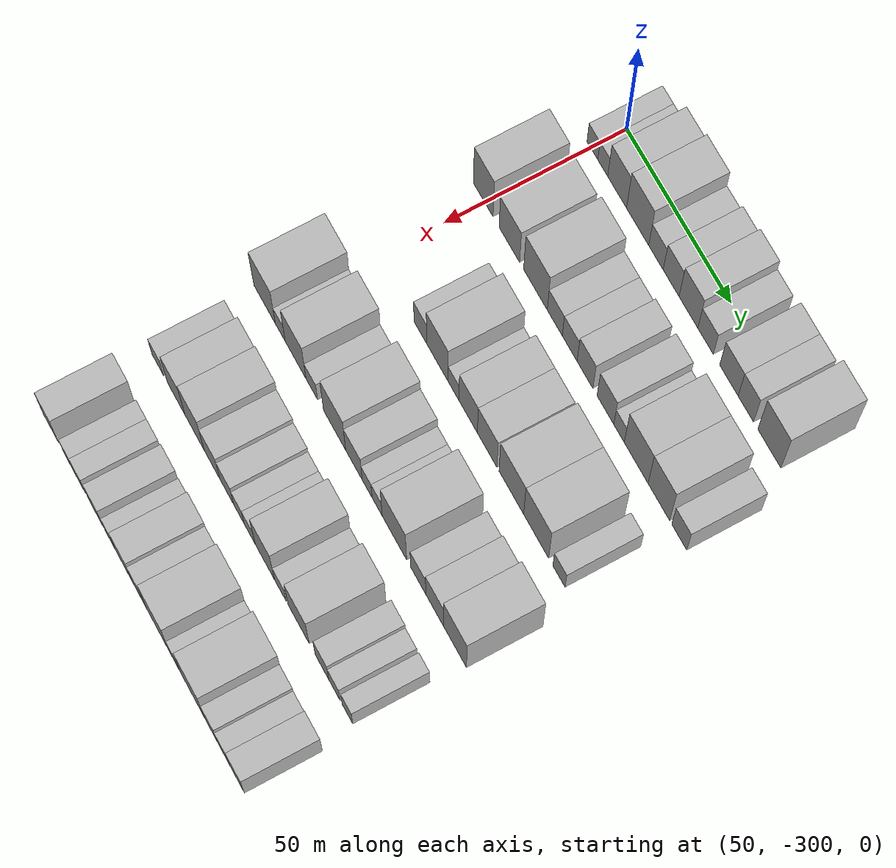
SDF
<sdf version="1.6">
 <world name="default">
  <model name="building_24">
   <static>1</static>
   <pose>50.0000 -299.1880 0 0.000000 0.000000 0.000000</pose>
   <link name="link">
    <pose>0 0 6.00 0 0 0</pose>
    <collision name="collision"><geometry><box><size>20.0000 5.2600 12.0000</size></box></geometry></collision>
    <visual name="visual">
     <cast_shadows>0</cast_shadows>
     <geometry><box><size>20.0000 5.2600 12.0000</size></box></geometry>
     <material>
      <script>
       <uri>model://HANNAS_wall/materials/scripts</uri>
       <uri>model://HANNAS_wall/materials/textures</uri>
       <name>vrc/HANNAS_wall</name>
      </script>
     </material>
    </visual>
   </link>
  </model>
  <model name="building_25">
   <static>1</static>
   <pose>50.0000 -294.1270 0 0.000000 0.000000 0.000000</pose>
   <link name="link">
    <pose>0 0 6.00 0 0 0</pose>
    <collision name="collision"><geometry><box><size>20.0000 4.8620 12.0000</size></box></geometry></collision>
    <visual name="visual">
     <cast_shadows>0</cast_shadows>
     <geometry><box><size>20.0000 4.8620 12.0000</size></box></geometry>
     <material>
      <script>
       <uri>model://HANNAS_wall/materials/scripts</uri>
       <uri>model://HANNAS_wall/materials/textures</uri>
       <name>vrc/HANNAS_wall</name>
      </script>
     </material>
    </visual>
   </link>
  </model>
  <model name="building_26">
   <static>1</static>
   <pose>50.0000 -287.1292 0 0.000000 0.000000 0.000000</pose>
   <link name="link">
    <pose>0 0 10.50 0 0 0</pose>
    <collision name="collision"><geometry><box><size>20.0000 9.1337 21.0000</size></box></geometry></collision>
    <visual name="visual">
     <cast_shadows>0</cast_shadows>
     <geometry><box><size>20.0000 9.1337 21.0000</size></box></geometry>
     <material>
      <script>
       <uri>model://HANNAS_wall/materials/scripts</uri>
       <uri>model://HANNAS_wall/materials/textures</uri>
       <name>vrc/HANNAS_wall</name>
      </script>
     </material>
    </visual>
   </link>
  </model>
  <model name="building_27">
   <static>1</static>
   <pose>50.0000 -277.2071 0 0.000000 0.000000 0.000000</pose>
   <link name="link">
    <pose>0 0 12.00 0 0 0</pose>
    <collision name="collision"><geometry><box><size>20.0000 10.7105 24.0000</size></box></geometry></collision>
    <visual name="visual">
     <cast_shadows>0</cast_shadows>
     <geometry><box><size>20.0000 10.7105 24.0000</size></box></geometry>
     <material>
      <script>
       <uri>model://HANNAS_wall/materials/scripts</uri>
       <uri>model://HANNAS_wall/materials/textures</uri>
       <name>vrc/HANNAS_wall</name>
      </script>
     </material>
    </visual>
   </link>
  </model>
  <model name="building_28">
   <static>1</static>
   <pose>50.0000 -268.3715 0 0.000000 0.000000 0.000000</pose>
   <link name="link">
    <pose>0 0 7.50 0 0 0</pose>
    <collision name="collision"><geometry><box><size>20.0000 6.9605 15.0000</size></box></geometry></collision>
    <visual name="visual">
     <cast_shadows>0</cast_shadows>
     <geometry><box><size>20.0000 6.9605 15.0000</size></box></geometry>
     <material>
      <script>
       <uri>model://HANNAS_wall/materials/scripts</uri>
       <uri>model://HANNAS_wall/materials/textures</uri>
       <name>vrc/HANNAS_wall</name>
      </script>
     </material>
    </visual>
   </link>
  </model>
  <model name="building_29">
   <static>1</static>
   <pose>50.0000 -261.0949 0 0.000000 0.000000 0.000000</pose>
   <link name="link">
    <pose>0 0 9.00 0 0 0</pose>
    <collision name="collision"><geometry><box><size>20.0000 7.5927 18.0000</size></box></geometry></collision>
    <visual name="visual">
     <cast_shadows>0</cast_shadows>
     <geometry><box><size>20.0000 7.5927 18.0000</size></box></geometry>
     <material>
      <script>
       <uri>model://HANNAS_wall/materials/scripts</uri>
       <uri>model://HANNAS_wall/materials/textures</uri>
       <name>vrc/HANNAS_wall</name>
      </script>
     </material>
    </visual>
   </link>
  </model>
  <model name="building_30">
   <static>1</static>
   <pose>50.0000 -252.8241 0 0.000000 0.000000 0.000000</pose>
   <link name="link">
    <pose>0 0 10.50 0 0 0</pose>
    <collision name="collision"><geometry><box><size>20.0000 8.9490 21.0000</size></box></geometry></collision>
    <visual name="visual">
     <cast_shadows>0</cast_shadows>
     <geometry><box><size>20.0000 8.9490 21.0000</size></box></geometry>
     <material>
      <script>
       <uri>model://HANNAS_wall/materials/scripts</uri>
       <uri>model://HANNAS_wall/materials/textures</uri>
       <name>vrc/HANNAS_wall</name>
      </script>
     </material>
    </visual>
   </link>
  </model>
  <model name="building_31">
   <static>1</static>
   <pose>50.0000 -244.6851 0 0.000000 0.000000 0.000000</pose>
   <link name="link">
    <pose>0 0 7.50 0 0 0</pose>
    <collision name="collision"><geometry><box><size>20.0000 7.3291 15.0000</size></box></geometry></collision>
    <visual name="visual">
     <cast_shadows>0</cast_shadows>
     <geometry><box><size>20.0000 7.3291 15.0000</size></box></geometry>
     <material>
      <script>
       <uri>model://HANNAS_wall/materials/scripts</uri>
       <uri>model://HANNAS_wall/materials/textures</uri>
       <name>vrc/HANNAS_wall</name>
      </script>
     </material>
    </visual>
   </link>
  </model>
  <model name="building_32">
   <static>1</static>
   <pose>50.0000 -233.7050 0 0.000000 0.000000 0.000000</pose>
   <link name="link">
    <pose>0 0 9.00 0 0 0</pose>
    <collision name="collision"><geometry><box><size>20.0000 8.6311 18.0000</size></box></geometry></collision>
    <visual name="visual">
     <cast_shadows>0</cast_shadows>
     <geometry><box><size>20.0000 8.6311 18.0000</size></box></geometry>
     <material>
      <script>
       <uri>model://HANNAS_wall/materials/scripts</uri>
       <uri>model://HANNAS_wall/materials/textures</uri>
       <name>vrc/HANNAS_wall</name>
      </script>
     </material>
    </visual>
   </link>
  </model>
  <model name="building_33">
   <static>1</static>
   <pose>50.0000 -225.7791 0 0.000000 0.000000 0.000000</pose>
   <link name="link">
    <pose>0 0 9.00 0 0 0</pose>
    <collision name="collision"><geometry><box><size>20.0000 7.2206 18.0000</size></box></geometry></collision>
    <visual name="visual">
     <cast_shadows>0</cast_shadows>
     <geometry><box><size>20.0000 7.2206 18.0000</size></box></geometry>
     <material>
      <script>
       <uri>model://HANNAS_wall/materials/scripts</uri>
       <uri>model://HANNAS_wall/materials/textures</uri>
       <name>vrc/HANNAS_wall</name>
      </script>
     </material>
    </visual>
   </link>
  </model>
  <model name="building_34">
   <static>1</static>
   <pose>50.0000 -214.8149 0 0.000000 0.000000 0.000000</pose>
   <link name="link">
    <pose>0 0 12.00 0 0 0</pose>
    <collision name="collision"><geometry><box><size>20.0000 10.7077 24.0000</size></box></geometry></collision>
    <visual name="visual">
     <cast_shadows>0</cast_shadows>
     <geometry><box><size>20.0000 10.7077 24.0000</size></box></geometry>
     <material>
      <script>
       <uri>model://HANNAS_wall/materials/scripts</uri>
       <uri>model://HANNAS_wall/materials/textures</uri>
       <name>vrc/HANNAS_wall</name>
      </script>
     </material>
    </visual>
   </link>
  </model>
  <model name="building_129">
   <static>1</static>
   <pose>79.0000 -300.7385 0 0.000000 0.000000 0.000000</pose>
   <link name="link">
    <pose>0 0 12.00 0 0 0</pose>
    <collision name="collision"><geometry><box><size>20.0000 9.6696 24.0000</size></box></geometry></collision>
    <visual name="visual">
     <cast_shadows>0</cast_shadows>
     <geometry><box><size>20.0000 9.6696 24.0000</size></box></geometry>
     <material>
      <script>
       <uri>model://HANNAS_wall/materials/scripts</uri>
       <uri>model://HANNAS_wall/materials/textures</uri>
       <name>vrc/HANNAS_wall</name>
      </script>
     </material>
    </visual>
   </link>
  </model>
  <model name="building_130">
   <static>1</static>
   <pose>79.0000 -287.8692 0 0.000000 0.000000 0.000000</pose>
   <link name="link">
    <pose>0 0 10.50 0 0 0</pose>
    <collision name="collision"><geometry><box><size>20.0000 10.0691 21.0000</size></box></geometry></collision>
    <visual name="visual">
     <cast_shadows>0</cast_shadows>
     <geometry><box><size>20.0000 10.0691 21.0000</size></box></geometry>
     <material>
      <script>
       <uri>model://HANNAS_wall/materials/scripts</uri>
       <uri>model://HANNAS_wall/materials/textures</uri>
       <name>vrc/HANNAS_wall</name>
      </script>
     </material>
    </visual>
   </link>
  </model>
  <model name="building_131">
   <static>1</static>
   <pose>79.0000 -275.0731 0 0.000000 0.000000 0.000000</pose>
   <link name="link">
    <pose>0 0 12.00 0 0 0</pose>
    <collision name="collision"><geometry><box><size>20.0000 11.5230 24.0000</size></box></geometry></collision>
    <visual name="visual">
     <cast_shadows>0</cast_shadows>
     <geometry><box><size>20.0000 11.5230 24.0000</size></box></geometry>
     <material>
      <script>
       <uri>model://HANNAS_wall/materials/scripts</uri>
       <uri>model://HANNAS_wall/materials/textures</uri>
       <name>vrc/HANNAS_wall</name>
      </script>
     </material>
    </visual>
   </link>
  </model>
  <model name="building_132">
   <static>1</static>
   <pose>79.0000 -265.6688 0 0.000000 0.000000 0.000000</pose>
   <link name="link">
    <pose>0 0 7.50 0 0 0</pose>
    <collision name="collision"><geometry><box><size>20.0000 7.2855 15.0000</size></box></geometry></collision>
    <visual name="visual">
     <cast_shadows>0</cast_shadows>
     <geometry><box><size>20.0000 7.2855 15.0000</size></box></geometry>
     <material>
      <script>
       <uri>model://HANNAS_wall/materials/scripts</uri>
       <uri>model://HANNAS_wall/materials/textures</uri>
       <name>vrc/HANNAS_wall</name>
      </script>
     </material>
    </visual>
   </link>
  </model>
  <model name="building_133">
   <static>1</static>
   <pose>79.0000 -258.4557 0 0.000000 0.000000 0.000000</pose>
   <link name="link">
    <pose>0 0 7.50 0 0 0</pose>
    <collision name="collision"><geometry><box><size>20.0000 7.1408 15.0000</size></box></geometry></collision>
    <visual name="visual">
     <cast_shadows>0</cast_shadows>
     <geometry><box><size>20.0000 7.1408 15.0000</size></box></geometry>
     <material>
      <script>
       <uri>model://HANNAS_wall/materials/scripts</uri>
       <uri>model://HANNAS_wall/materials/textures</uri>
       <name>vrc/HANNAS_wall</name>
      </script>
     </material>
    </visual>
   </link>
  </model>
  <model name="building_134">
   <static>1</static>
   <pose>79.0000 -251.0875 0 0.000000 0.000000 0.000000</pose>
   <link name="link">
    <pose>0 0 9.00 0 0 0</pose>
    <collision name="collision"><geometry><box><size>20.0000 7.5955 18.0000</size></box></geometry></collision>
    <visual name="visual">
     <cast_shadows>0</cast_shadows>
     <geometry><box><size>20.0000 7.5955 18.0000</size></box></geometry>
     <material>
      <script>
       <uri>model://HANNAS_wall/materials/scripts</uri>
       <uri>model://HANNAS_wall/materials/textures</uri>
       <name>vrc/HANNAS_wall</name>
      </script>
     </material>
    </visual>
   </link>
  </model>
  <model name="building_135">
   <static>1</static>
   <pose>79.0000 -241.3027 0 0.000000 0.000000 0.000000</pose>
   <link name="link">
    <pose>0 0 9.00 0 0 0</pose>
    <collision name="collision"><geometry><box><size>20.0000 7.9740 18.0000</size></box></geometry></collision>
    <visual name="visual">
     <cast_shadows>0</cast_shadows>
     <geometry><box><size>20.0000 7.9740 18.0000</size></box></geometry>
     <material>
      <script>
       <uri>model://HANNAS_wall/materials/scripts</uri>
       <uri>model://HANNAS_wall/materials/textures</uri>
       <name>vrc/HANNAS_wall</name>
      </script>
     </material>
    </visual>
   </link>
  </model>
  <model name="building_136">
   <static>1</static>
   <pose>79.0000 -234.8281 0 0.000000 0.000000 0.000000</pose>
   <link name="link">
    <pose>0 0 6.00 0 0 0</pose>
    <collision name="collision"><geometry><box><size>20.0000 4.9752 12.0000</size></box></geometry></collision>
    <visual name="visual">
     <cast_shadows>0</cast_shadows>
     <geometry><box><size>20.0000 4.9752 12.0000</size></box></geometry>
     <material>
      <script>
       <uri>model://HANNAS_wall/materials/scripts</uri>
       <uri>model://HANNAS_wall/materials/textures</uri>
       <name>vrc/HANNAS_wall</name>
      </script>
     </material>
    </visual>
   </link>
  </model>
  <model name="building_137">
   <static>1</static>
   <pose>79.0000 -226.7027 0 0.000000 0.000000 0.000000</pose>
   <link name="link">
    <pose>0 0 12.00 0 0 0</pose>
    <collision name="collision"><geometry><box><size>20.0000 11.2756 24.0000</size></box></geometry></collision>
    <visual name="visual">
     <cast_shadows>0</cast_shadows>
     <geometry><box><size>20.0000 11.2756 24.0000</size></box></geometry>
     <material>
      <script>
       <uri>model://HANNAS_wall/materials/scripts</uri>
       <uri>model://HANNAS_wall/materials/textures</uri>
       <name>vrc/HANNAS_wall</name>
      </script>
     </material>
    </visual>
   </link>
  </model>
  <model name="building_138">
   <static>1</static>
   <pose>79.0000 -215.9854 0 0.000000 0.000000 0.000000</pose>
   <link name="link">
    <pose>0 0 12.00 0 0 0</pose>
    <collision name="collision"><geometry><box><size>20.0000 10.1590 24.0000</size></box></geometry></collision>
    <visual name="visual">
     <cast_shadows>0</cast_shadows>
     <geometry><box><size>20.0000 10.1590 24.0000</size></box></geometry>
     <material>
      <script>
       <uri>model://HANNAS_wall/materials/scripts</uri>
       <uri>model://HANNAS_wall/materials/textures</uri>
       <name>vrc/HANNAS_wall</name>
      </script>
     </material>
    </visual>
   </link>
  </model>
  <model name="building_139">
   <static>1</static>
   <pose>79.0000 -206.4088 0 0.000000 0.000000 0.000000</pose>
   <link name="link">
    <pose>0 0 7.50 0 0 0</pose>
    <collision name="collision"><geometry><box><size>20.0000 6.9941 15.0000</size></box></geometry></collision>
    <visual name="visual">
     <cast_shadows>0</cast_shadows>
     <geometry><box><size>20.0000 6.9941 15.0000</size></box></geometry>
     <material>
      <script>
       <uri>model://HANNAS_wall/materials/scripts</uri>
       <uri>model://HANNAS_wall/materials/textures</uri>
       <name>vrc/HANNAS_wall</name>
      </script>
     </material>
    </visual>
   </link>
  </model>
  <model name="building_242">
   <static>1</static>
   <pose>108.0000 -278.6665 0 0.000000 0.000000 0.000000</pose>
   <link name="link">
    <pose>0 0 7.50 0 0 0</pose>
    <collision name="collision"><geometry><box><size>20.0000 6.3005 15.0000</size></box></geometry></collision>
    <visual name="visual">
     <cast_shadows>0</cast_shadows>
     <geometry><box><size>20.0000 6.3005 15.0000</size></box></geometry>
     <material>
      <script>
       <uri>model://HANNAS_wall/materials/scripts</uri>
       <uri>model://HANNAS_wall/materials/textures</uri>
       <name>vrc/HANNAS_wall</name>
      </script>
     </material>
    </visual>
   </link>
  </model>
  <model name="building_243">
   <static>1</static>
   <pose>108.0000 -270.2518 0 0.000000 0.000000 0.000000</pose>
   <link name="link">
    <pose>0 0 12.00 0 0 0</pose>
    <collision name="collision"><geometry><box><size>20.0000 10.5290 24.0000</size></box></geometry></collision>
    <visual name="visual">
     <cast_shadows>0</cast_shadows>
     <geometry><box><size>20.0000 10.5290 24.0000</size></box></geometry>
     <material>
      <script>
       <uri>model://HANNAS_wall/materials/scripts</uri>
       <uri>model://HANNAS_wall/materials/textures</uri>
       <name>vrc/HANNAS_wall</name>
      </script>
     </material>
    </visual>
   </link>
  </model>
  <model name="building_244">
   <static>1</static>
   <pose>108.0000 -262.3268 0 0.000000 0.000000 0.000000</pose>
   <link name="link">
    <pose>0 0 6.00 0 0 0</pose>
    <collision name="collision"><geometry><box><size>20.0000 5.3210 12.0000</size></box></geometry></collision>
    <visual name="visual">
     <cast_shadows>0</cast_shadows>
     <geometry><box><size>20.0000 5.3210 12.0000</size></box></geometry>
     <material>
      <script>
       <uri>model://HANNAS_wall/materials/scripts</uri>
       <uri>model://HANNAS_wall/materials/textures</uri>
       <name>vrc/HANNAS_wall</name>
      </script>
     </material>
    </visual>
   </link>
  </model>
  <model name="building_245">
   <static>1</static>
   <pose>108.0000 -255.2063 0 0.000000 0.000000 0.000000</pose>
   <link name="link">
    <pose>0 0 10.50 0 0 0</pose>
    <collision name="collision"><geometry><box><size>20.0000 8.9200 21.0000</size></box></geometry></collision>
    <visual name="visual">
     <cast_shadows>0</cast_shadows>
     <geometry><box><size>20.0000 8.9200 21.0000</size></box></geometry>
     <material>
      <script>
       <uri>model://HANNAS_wall/materials/scripts</uri>
       <uri>model://HANNAS_wall/materials/textures</uri>
       <name>vrc/HANNAS_wall</name>
      </script>
     </material>
    </visual>
   </link>
  </model>
  <model name="building_246">
   <static>1</static>
   <pose>108.0000 -246.0118 0 0.000000 0.000000 0.000000</pose>
   <link name="link">
    <pose>0 0 10.50 0 0 0</pose>
    <collision name="collision"><geometry><box><size>20.0000 9.4690 21.0000</size></box></geometry></collision>
    <visual name="visual">
     <cast_shadows>0</cast_shadows>
     <geometry><box><size>20.0000 9.4690 21.0000</size></box></geometry>
     <material>
      <script>
       <uri>model://HANNAS_wall/materials/scripts</uri>
       <uri>model://HANNAS_wall/materials/textures</uri>
       <name>vrc/HANNAS_wall</name>
      </script>
     </material>
    </visual>
   </link>
  </model>
  <model name="building_247">
   <static>1</static>
   <pose>108.0000 -234.3592 0 0.000000 0.000000 0.000000</pose>
   <link name="link">
    <pose>0 0 12.00 0 0 0</pose>
    <collision name="collision"><geometry><box><size>20.0000 11.8361 24.0000</size></box></geometry></collision>
    <visual name="visual">
     <cast_shadows>0</cast_shadows>
     <geometry><box><size>20.0000 11.8361 24.0000</size></box></geometry>
     <material>
      <script>
       <uri>model://HANNAS_wall/materials/scripts</uri>
       <uri>model://HANNAS_wall/materials/textures</uri>
       <name>vrc/HANNAS_wall</name>
      </script>
     </material>
    </visual>
   </link>
  </model>
  <model name="building_248">
   <static>1</static>
   <pose>108.0000 -222.4678 0 0.000000 0.000000 0.000000</pose>
   <link name="link">
    <pose>0 0 12.00 0 0 0</pose>
    <collision name="collision"><geometry><box><size>20.0000 11.9469 24.0000</size></box></geometry></collision>
    <visual name="visual">
     <cast_shadows>0</cast_shadows>
     <geometry><box><size>20.0000 11.9469 24.0000</size></box></geometry>
     <material>
      <script>
       <uri>model://HANNAS_wall/materials/scripts</uri>
       <uri>model://HANNAS_wall/materials/textures</uri>
       <name>vrc/HANNAS_wall</name>
      </script>
     </material>
    </visual>
   </link>
  </model>
  <model name="building_249">
   <static>1</static>
   <pose>108.0000 -211.5928 0 0.000000 0.000000 0.000000</pose>
   <link name="link">
    <pose>0 0 6.00 0 0 0</pose>
    <collision name="collision"><geometry><box><size>20.0000 5.8031 12.0000</size></box></geometry></collision>
    <visual name="visual">
     <cast_shadows>0</cast_shadows>
     <geometry><box><size>20.0000 5.8031 12.0000</size></box></geometry>
     <material>
      <script>
       <uri>model://HANNAS_wall/materials/scripts</uri>
       <uri>model://HANNAS_wall/materials/textures</uri>
       <name>vrc/HANNAS_wall</name>
      </script>
     </material>
    </visual>
   </link>
  </model>
  <model name="building_350">
   <static>1</static>
   <pose>137.0000 -302.4532 0 0.000000 0.000000 0.000000</pose>
   <link name="link">
    <pose>0 0 12.00 0 0 0</pose>
    <collision name="collision"><geometry><box><size>20.0000 10.8817 24.0000</size></box></geometry></collision>
    <visual name="visual">
     <cast_shadows>0</cast_shadows>
     <geometry><box><size>20.0000 10.8817 24.0000</size></box></geometry>
     <material>
      <script>
       <uri>model://HANNAS_wall/materials/scripts</uri>
       <uri>model://HANNAS_wall/materials/textures</uri>
       <name>vrc/HANNAS_wall</name>
      </script>
     </material>
    </visual>
   </link>
  </model>
  <model name="building_351">
   <static>1</static>
   <pose>137.0000 -294.5074 0 0.000000 0.000000 0.000000</pose>
   <link name="link">
    <pose>0 0 6.00 0 0 0</pose>
    <collision name="collision"><geometry><box><size>20.0000 5.0100 12.0000</size></box></geometry></collision>
    <visual name="visual">
     <cast_shadows>0</cast_shadows>
     <geometry><box><size>20.0000 5.0100 12.0000</size></box></geometry>
     <material>
      <script>
       <uri>model://HANNAS_wall/materials/scripts</uri>
       <uri>model://HANNAS_wall/materials/textures</uri>
       <name>vrc/HANNAS_wall</name>
      </script>
     </material>
    </visual>
   </link>
  </model>
  <model name="building_352">
   <static>1</static>
   <pose>137.0000 -286.7806 0 0.000000 0.000000 0.000000</pose>
   <link name="link">
    <pose>0 0 12.00 0 0 0</pose>
    <collision name="collision"><geometry><box><size>20.0000 10.4436 24.0000</size></box></geometry></collision>
    <visual name="visual">
     <cast_shadows>0</cast_shadows>
     <geometry><box><size>20.0000 10.4436 24.0000</size></box></geometry>
     <material>
      <script>
       <uri>model://HANNAS_wall/materials/scripts</uri>
       <uri>model://HANNAS_wall/materials/textures</uri>
       <name>vrc/HANNAS_wall</name>
      </script>
     </material>
    </visual>
   </link>
  </model>
  <model name="building_353">
   <static>1</static>
   <pose>137.0000 -278.6592 0 0.000000 0.000000 0.000000</pose>
   <link name="link">
    <pose>0 0 6.00 0 0 0</pose>
    <collision name="collision"><geometry><box><size>20.0000 5.7993 12.0000</size></box></geometry></collision>
    <visual name="visual">
     <cast_shadows>0</cast_shadows>
     <geometry><box><size>20.0000 5.7993 12.0000</size></box></geometry>
     <material>
      <script>
       <uri>model://HANNAS_wall/materials/scripts</uri>
       <uri>model://HANNAS_wall/materials/textures</uri>
       <name>vrc/HANNAS_wall</name>
      </script>
     </material>
    </visual>
   </link>
  </model>
  <model name="building_354">
   <static>1</static>
   <pose>137.0000 -267.2615 0 0.000000 0.000000 0.000000</pose>
   <link name="link">
    <pose>0 0 12.00 0 0 0</pose>
    <collision name="collision"><geometry><box><size>20.0000 10.9960 24.0000</size></box></geometry></collision>
    <visual name="visual">
     <cast_shadows>0</cast_shadows>
     <geometry><box><size>20.0000 10.9960 24.0000</size></box></geometry>
     <material>
      <script>
       <uri>model://HANNAS_wall/materials/scripts</uri>
       <uri>model://HANNAS_wall/materials/textures</uri>
       <name>vrc/HANNAS_wall</name>
      </script>
     </material>
    </visual>
   </link>
  </model>
  <model name="building_355">
   <static>1</static>
   <pose>137.0000 -257.7033 0 0.000000 0.000000 0.000000</pose>
   <link name="link">
    <pose>0 0 9.00 0 0 0</pose>
    <collision name="collision"><geometry><box><size>20.0000 8.1202 18.0000</size></box></geometry></collision>
    <visual name="visual">
     <cast_shadows>0</cast_shadows>
     <geometry><box><size>20.0000 8.1202 18.0000</size></box></geometry>
     <material>
      <script>
       <uri>model://HANNAS_wall/materials/scripts</uri>
       <uri>model://HANNAS_wall/materials/textures</uri>
       <name>vrc/HANNAS_wall</name>
      </script>
     </material>
    </visual>
   </link>
  </model>
  <model name="building_356">
   <static>1</static>
   <pose>137.0000 -251.1884 0 0.000000 0.000000 0.000000</pose>
   <link name="link">
    <pose>0 0 6.00 0 0 0</pose>
    <collision name="collision"><geometry><box><size>20.0000 4.9097 12.0000</size></box></geometry></collision>
    <visual name="visual">
     <cast_shadows>0</cast_shadows>
     <geometry><box><size>20.0000 4.9097 12.0000</size></box></geometry>
     <material>
      <script>
       <uri>model://HANNAS_wall/materials/scripts</uri>
       <uri>model://HANNAS_wall/materials/textures</uri>
       <name>vrc/HANNAS_wall</name>
      </script>
     </material>
    </visual>
   </link>
  </model>
  <model name="building_357">
   <static>1</static>
   <pose>137.0000 -246.2438 0 0.000000 0.000000 0.000000</pose>
   <link name="link">
    <pose>0 0 6.00 0 0 0</pose>
    <collision name="collision"><geometry><box><size>20.0000 4.9794 12.0000</size></box></geometry></collision>
    <visual name="visual">
     <cast_shadows>0</cast_shadows>
     <geometry><box><size>20.0000 4.9794 12.0000</size></box></geometry>
     <material>
      <script>
       <uri>model://HANNAS_wall/materials/scripts</uri>
       <uri>model://HANNAS_wall/materials/textures</uri>
       <name>vrc/HANNAS_wall</name>
      </script>
     </material>
    </visual>
   </link>
  </model>
  <model name="building_358">
   <static>1</static>
   <pose>137.0000 -237.8084 0 0.000000 0.000000 0.000000</pose>
   <link name="link">
    <pose>0 0 12.00 0 0 0</pose>
    <collision name="collision"><geometry><box><size>20.0000 11.8913 24.0000</size></box></geometry></collision>
    <visual name="visual">
     <cast_shadows>0</cast_shadows>
     <geometry><box><size>20.0000 11.8913 24.0000</size></box></geometry>
     <material>
      <script>
       <uri>model://HANNAS_wall/materials/scripts</uri>
       <uri>model://HANNAS_wall/materials/textures</uri>
       <name>vrc/HANNAS_wall</name>
      </script>
     </material>
    </visual>
   </link>
  </model>
  <model name="building_359">
   <static>1</static>
   <pose>137.0000 -226.1944 0 0.000000 0.000000 0.000000</pose>
   <link name="link">
    <pose>0 0 7.50 0 0 0</pose>
    <collision name="collision"><geometry><box><size>20.0000 7.3368 15.0000</size></box></geometry></collision>
    <visual name="visual">
     <cast_shadows>0</cast_shadows>
     <geometry><box><size>20.0000 7.3368 15.0000</size></box></geometry>
     <material>
      <script>
       <uri>model://HANNAS_wall/materials/scripts</uri>
       <uri>model://HANNAS_wall/materials/textures</uri>
       <name>vrc/HANNAS_wall</name>
      </script>
     </material>
    </visual>
   </link>
  </model>
  <model name="building_360">
   <static>1</static>
   <pose>137.0000 -218.2974 0 0.000000 0.000000 0.000000</pose>
   <link name="link">
    <pose>0 0 9.00 0 0 0</pose>
    <collision name="collision"><geometry><box><size>20.0000 8.4572 18.0000</size></box></geometry></collision>
    <visual name="visual">
     <cast_shadows>0</cast_shadows>
     <geometry><box><size>20.0000 8.4572 18.0000</size></box></geometry>
     <material>
      <script>
       <uri>model://HANNAS_wall/materials/scripts</uri>
       <uri>model://HANNAS_wall/materials/textures</uri>
       <name>vrc/HANNAS_wall</name>
      </script>
     </material>
    </visual>
   </link>
  </model>
  <model name="building_361">
   <static>1</static>
   <pose>137.0000 -208.5529 0 0.000000 0.000000 0.000000</pose>
   <link name="link">
    <pose>0 0 12.00 0 0 0</pose>
    <collision name="collision"><geometry><box><size>20.0000 11.0318 24.0000</size></box></geometry></collision>
    <visual name="visual">
     <cast_shadows>0</cast_shadows>
     <geometry><box><size>20.0000 11.0318 24.0000</size></box></geometry>
     <material>
      <script>
       <uri>model://HANNAS_wall/materials/scripts</uri>
       <uri>model://HANNAS_wall/materials/textures</uri>
       <name>vrc/HANNAS_wall</name>
      </script>
     </material>
    </visual>
   </link>
  </model>
  <model name="building_468">
   <static>1</static>
   <pose>166.0000 -301.1888 0 0.000000 0.000000 0.000000</pose>
   <link name="link">
    <pose>0 0 6.00 0 0 0</pose>
    <collision name="collision"><geometry><box><size>20.0000 5.9606 12.0000</size></box></geometry></collision>
    <visual name="visual">
     <cast_shadows>0</cast_shadows>
     <geometry><box><size>20.0000 5.9606 12.0000</size></box></geometry>
     <material>
      <script>
       <uri>model://HANNAS_wall/materials/scripts</uri>
       <uri>model://HANNAS_wall/materials/textures</uri>
       <name>vrc/HANNAS_wall</name>
      </script>
     </material>
    </visual>
   </link>
  </model>
  <model name="building_469">
   <static>1</static>
   <pose>166.0000 -291.7028 0 0.000000 0.000000 0.000000</pose>
   <link name="link">
    <pose>0 0 10.50 0 0 0</pose>
    <collision name="collision"><geometry><box><size>20.0000 9.0114 21.0000</size></box></geometry></collision>
    <visual name="visual">
     <cast_shadows>0</cast_shadows>
     <geometry><box><size>20.0000 9.0114 21.0000</size></box></geometry>
     <material>
      <script>
       <uri>model://HANNAS_wall/materials/scripts</uri>
       <uri>model://HANNAS_wall/materials/textures</uri>
       <name>vrc/HANNAS_wall</name>
      </script>
     </material>
    </visual>
   </link>
  </model>
  <model name="building_470">
   <static>1</static>
   <pose>166.0000 -282.3387 0 0.000000 0.000000 0.000000</pose>
   <link name="link">
    <pose>0 0 12.00 0 0 0</pose>
    <collision name="collision"><geometry><box><size>20.0000 9.7168 24.0000</size></box></geometry></collision>
    <visual name="visual">
     <cast_shadows>0</cast_shadows>
     <geometry><box><size>20.0000 9.7168 24.0000</size></box></geometry>
     <material>
      <script>
       <uri>model://HANNAS_wall/materials/scripts</uri>
       <uri>model://HANNAS_wall/materials/textures</uri>
       <name>vrc/HANNAS_wall</name>
      </script>
     </material>
    </visual>
   </link>
  </model>
  <model name="building_471">
   <static>1</static>
   <pose>166.0000 -273.4529 0 0.000000 0.000000 0.000000</pose>
   <link name="link">
    <pose>0 0 9.00 0 0 0</pose>
    <collision name="collision"><geometry><box><size>20.0000 8.0549 18.0000</size></box></geometry></collision>
    <visual name="visual">
     <cast_shadows>0</cast_shadows>
     <geometry><box><size>20.0000 8.0549 18.0000</size></box></geometry>
     <material>
      <script>
       <uri>model://HANNAS_wall/materials/scripts</uri>
       <uri>model://HANNAS_wall/materials/textures</uri>
       <name>vrc/HANNAS_wall</name>
      </script>
     </material>
    </visual>
   </link>
  </model>
  <model name="building_472">
   <static>1</static>
   <pose>166.0000 -265.9792 0 0.000000 0.000000 0.000000</pose>
   <link name="link">
    <pose>0 0 7.50 0 0 0</pose>
    <collision name="collision"><geometry><box><size>20.0000 6.8924 15.0000</size></box></geometry></collision>
    <visual name="visual">
     <cast_shadows>0</cast_shadows>
     <geometry><box><size>20.0000 6.8924 15.0000</size></box></geometry>
     <material>
      <script>
       <uri>model://HANNAS_wall/materials/scripts</uri>
       <uri>model://HANNAS_wall/materials/textures</uri>
       <name>vrc/HANNAS_wall</name>
      </script>
     </material>
    </visual>
   </link>
  </model>
  <model name="building_473">
   <static>1</static>
   <pose>166.0000 -259.9214 0 0.000000 0.000000 0.000000</pose>
   <link name="link">
    <pose>0 0 6.00 0 0 0</pose>
    <collision name="collision"><geometry><box><size>20.0000 5.2233 12.0000</size></box></geometry></collision>
    <visual name="visual">
     <cast_shadows>0</cast_shadows>
     <geometry><box><size>20.0000 5.2233 12.0000</size></box></geometry>
     <material>
      <script>
       <uri>model://HANNAS_wall/materials/scripts</uri>
       <uri>model://HANNAS_wall/materials/textures</uri>
       <name>vrc/HANNAS_wall</name>
      </script>
     </material>
    </visual>
   </link>
  </model>
  <model name="building_474">
   <static>1</static>
   <pose>166.0000 -254.5402 0 0.000000 0.000000 0.000000</pose>
   <link name="link">
    <pose>0 0 6.00 0 0 0</pose>
    <collision name="collision"><geometry><box><size>20.0000 5.5390 12.0000</size></box></geometry></collision>
    <visual name="visual">
     <cast_shadows>0</cast_shadows>
     <geometry><box><size>20.0000 5.5390 12.0000</size></box></geometry>
     <material>
      <script>
       <uri>model://HANNAS_wall/materials/scripts</uri>
       <uri>model://HANNAS_wall/materials/textures</uri>
       <name>vrc/HANNAS_wall</name>
      </script>
     </material>
    </visual>
   </link>
  </model>
  <model name="building_475">
   <static>1</static>
   <pose>166.0000 -246.9508 0 0.000000 0.000000 0.000000</pose>
   <link name="link">
    <pose>0 0 12.00 0 0 0</pose>
    <collision name="collision"><geometry><box><size>20.0000 9.6399 24.0000</size></box></geometry></collision>
    <visual name="visual">
     <cast_shadows>0</cast_shadows>
     <geometry><box><size>20.0000 9.6399 24.0000</size></box></geometry>
     <material>
      <script>
       <uri>model://HANNAS_wall/materials/scripts</uri>
       <uri>model://HANNAS_wall/materials/textures</uri>
       <name>vrc/HANNAS_wall</name>
      </script>
     </material>
    </visual>
   </link>
  </model>
  <model name="building_476">
   <static>1</static>
   <pose>166.0000 -239.3189 0 0.000000 0.000000 0.000000</pose>
   <link name="link">
    <pose>0 0 6.00 0 0 0</pose>
    <collision name="collision"><geometry><box><size>20.0000 5.6239 12.0000</size></box></geometry></collision>
    <visual name="visual">
     <cast_shadows>0</cast_shadows>
     <geometry><box><size>20.0000 5.6239 12.0000</size></box></geometry>
     <material>
      <script>
       <uri>model://HANNAS_wall/materials/scripts</uri>
       <uri>model://HANNAS_wall/materials/textures</uri>
       <name>vrc/HANNAS_wall</name>
      </script>
     </material>
    </visual>
   </link>
  </model>
  <model name="building_477">
   <static>1</static>
   <pose>166.0000 -230.3409 0 0.000000 0.000000 0.000000</pose>
   <link name="link">
    <pose>0 0 10.50 0 0 0</pose>
    <collision name="collision"><geometry><box><size>20.0000 10.3322 21.0000</size></box></geometry></collision>
    <visual name="visual">
     <cast_shadows>0</cast_shadows>
     <geometry><box><size>20.0000 10.3322 21.0000</size></box></geometry>
     <material>
      <script>
       <uri>model://HANNAS_wall/materials/scripts</uri>
       <uri>model://HANNAS_wall/materials/textures</uri>
       <name>vrc/HANNAS_wall</name>
      </script>
     </material>
    </visual>
   </link>
  </model>
  <model name="building_478">
   <static>1</static>
   <pose>166.0000 -218.8706 0 0.000000 0.000000 0.000000</pose>
   <link name="link">
    <pose>0 0 7.50 0 0 0</pose>
    <collision name="collision"><geometry><box><size>20.0000 6.6082 15.0000</size></box></geometry></collision>
    <visual name="visual">
     <cast_shadows>0</cast_shadows>
     <geometry><box><size>20.0000 6.6082 15.0000</size></box></geometry>
     <material>
      <script>
       <uri>model://HANNAS_wall/materials/scripts</uri>
       <uri>model://HANNAS_wall/materials/textures</uri>
       <name>vrc/HANNAS_wall</name>
      </script>
     </material>
    </visual>
   </link>
  </model>
  <model name="building_479">
   <static>1</static>
   <pose>166.0000 -212.8292 0 0.000000 0.000000 0.000000</pose>
   <link name="link">
    <pose>0 0 6.00 0 0 0</pose>
    <collision name="collision"><geometry><box><size>20.0000 5.4747 12.0000</size></box></geometry></collision>
    <visual name="visual">
     <cast_shadows>0</cast_shadows>
     <geometry><box><size>20.0000 5.4747 12.0000</size></box></geometry>
     <material>
      <script>
       <uri>model://HANNAS_wall/materials/scripts</uri>
       <uri>model://HANNAS_wall/materials/textures</uri>
       <name>vrc/HANNAS_wall</name>
      </script>
     </material>
    </visual>
   </link>
  </model>
  <model name="building_480">
   <static>1</static>
   <pose>166.0000 -206.5381 0 0.000000 0.000000 0.000000</pose>
   <link name="link">
    <pose>0 0 6.00 0 0 0</pose>
    <collision name="collision"><geometry><box><size>20.0000 5.1074 12.0000</size></box></geometry></collision>
    <visual name="visual">
     <cast_shadows>0</cast_shadows>
     <geometry><box><size>20.0000 5.1074 12.0000</size></box></geometry>
     <material>
      <script>
       <uri>model://HANNAS_wall/materials/scripts</uri>
       <uri>model://HANNAS_wall/materials/textures</uri>
       <name>vrc/HANNAS_wall</name>
      </script>
     </material>
    </visual>
   </link>
  </model>
  <model name="building_586">
   <static>1</static>
   <pose>195.0000 -299.3691 0 0.000000 0.000000 0.000000</pose>
   <link name="link">
    <pose>0 0 9.00 0 0 0</pose>
    <collision name="collision"><geometry><box><size>20.0000 7.7800 18.0000</size></box></geometry></collision>
    <visual name="visual">
     <cast_shadows>0</cast_shadows>
     <geometry><box><size>20.0000 7.7800 18.0000</size></box></geometry>
     <material>
      <script>
       <uri>model://HANNAS_wall/materials/scripts</uri>
       <uri>model://HANNAS_wall/materials/textures</uri>
       <name>vrc/HANNAS_wall</name>
      </script>
     </material>
    </visual>
   </link>
  </model>
  <model name="building_587">
   <static>1</static>
   <pose>195.0000 -289.8870 0 0.000000 0.000000 0.000000</pose>
   <link name="link">
    <pose>0 0 6.00 0 0 0</pose>
    <collision name="collision"><geometry><box><size>20.0000 5.1842 12.0000</size></box></geometry></collision>
    <visual name="visual">
     <cast_shadows>0</cast_shadows>
     <geometry><box><size>20.0000 5.1842 12.0000</size></box></geometry>
     <material>
      <script>
       <uri>model://HANNAS_wall/materials/scripts</uri>
       <uri>model://HANNAS_wall/materials/textures</uri>
       <name>vrc/HANNAS_wall</name>
      </script>
     </material>
    </visual>
   </link>
  </model>
  <model name="building_588">
   <static>1</static>
   <pose>195.0000 -284.3636 0 0.000000 0.000000 0.000000</pose>
   <link name="link">
    <pose>0 0 6.00 0 0 0</pose>
    <collision name="collision"><geometry><box><size>20.0000 5.8625 12.0000</size></box></geometry></collision>
    <visual name="visual">
     <cast_shadows>0</cast_shadows>
     <geometry><box><size>20.0000 5.8625 12.0000</size></box></geometry>
     <material>
      <script>
       <uri>model://HANNAS_wall/materials/scripts</uri>
       <uri>model://HANNAS_wall/materials/textures</uri>
       <name>vrc/HANNAS_wall</name>
      </script>
     </material>
    </visual>
   </link>
  </model>
  <model name="building_589">
   <static>1</static>
   <pose>195.0000 -275.8214 0 0.000000 0.000000 0.000000</pose>
   <link name="link">
    <pose>0 0 7.50 0 0 0</pose>
    <collision name="collision"><geometry><box><size>20.0000 7.2219 15.0000</size></box></geometry></collision>
    <visual name="visual">
     <cast_shadows>0</cast_shadows>
     <geometry><box><size>20.0000 7.2219 15.0000</size></box></geometry>
     <material>
      <script>
       <uri>model://HANNAS_wall/materials/scripts</uri>
       <uri>model://HANNAS_wall/materials/textures</uri>
       <name>vrc/HANNAS_wall</name>
      </script>
     </material>
    </visual>
   </link>
  </model>
  <model name="building_590">
   <static>1</static>
   <pose>195.0000 -268.4724 0 0.000000 0.000000 0.000000</pose>
   <link name="link">
    <pose>0 0 6.00 0 0 0</pose>
    <collision name="collision"><geometry><box><size>20.0000 5.4761 12.0000</size></box></geometry></collision>
    <visual name="visual">
     <cast_shadows>0</cast_shadows>
     <geometry><box><size>20.0000 5.4761 12.0000</size></box></geometry>
     <material>
      <script>
       <uri>model://HANNAS_wall/materials/scripts</uri>
       <uri>model://HANNAS_wall/materials/textures</uri>
       <name>vrc/HANNAS_wall</name>
      </script>
     </material>
    </visual>
   </link>
  </model>
  <model name="building_591">
   <static>1</static>
   <pose>195.0000 -261.6116 0 0.000000 0.000000 0.000000</pose>
   <link name="link">
    <pose>0 0 9.00 0 0 0</pose>
    <collision name="collision"><geometry><box><size>20.0000 8.2454 18.0000</size></box></geometry></collision>
    <visual name="visual">
     <cast_shadows>0</cast_shadows>
     <geometry><box><size>20.0000 8.2454 18.0000</size></box></geometry>
     <material>
      <script>
       <uri>model://HANNAS_wall/materials/scripts</uri>
       <uri>model://HANNAS_wall/materials/textures</uri>
       <name>vrc/HANNAS_wall</name>
      </script>
     </material>
    </visual>
   </link>
  </model>
  <model name="building_592">
   <static>1</static>
   <pose>195.0000 -253.9195 0 0.000000 0.000000 0.000000</pose>
   <link name="link">
    <pose>0 0 7.50 0 0 0</pose>
    <collision name="collision"><geometry><box><size>20.0000 7.1389 15.0000</size></box></geometry></collision>
    <visual name="visual">
     <cast_shadows>0</cast_shadows>
     <geometry><box><size>20.0000 7.1389 15.0000</size></box></geometry>
     <material>
      <script>
       <uri>model://HANNAS_wall/materials/scripts</uri>
       <uri>model://HANNAS_wall/materials/textures</uri>
       <name>vrc/HANNAS_wall</name>
      </script>
     </material>
    </visual>
   </link>
  </model>
  <model name="building_593">
   <static>1</static>
   <pose>195.0000 -244.4959 0 0.000000 0.000000 0.000000</pose>
   <link name="link">
    <pose>0 0 12.00 0 0 0</pose>
    <collision name="collision"><geometry><box><size>20.0000 11.7083 24.0000</size></box></geometry></collision>
    <visual name="visual">
     <cast_shadows>0</cast_shadows>
     <geometry><box><size>20.0000 11.7083 24.0000</size></box></geometry>
     <material>
      <script>
       <uri>model://HANNAS_wall/materials/scripts</uri>
       <uri>model://HANNAS_wall/materials/textures</uri>
       <name>vrc/HANNAS_wall</name>
      </script>
     </material>
    </visual>
   </link>
  </model>
  <model name="building_594">
   <static>1</static>
   <pose>195.0000 -235.7040 0 0.000000 0.000000 0.000000</pose>
   <link name="link">
    <pose>0 0 6.00 0 0 0</pose>
    <collision name="collision"><geometry><box><size>20.0000 5.8755 12.0000</size></box></geometry></collision>
    <visual name="visual">
     <cast_shadows>0</cast_shadows>
     <geometry><box><size>20.0000 5.8755 12.0000</size></box></geometry>
     <material>
      <script>
       <uri>model://HANNAS_wall/materials/scripts</uri>
       <uri>model://HANNAS_wall/materials/textures</uri>
       <name>vrc/HANNAS_wall</name>
      </script>
     </material>
    </visual>
   </link>
  </model>
  <model name="building_595">
   <static>1</static>
   <pose>195.0000 -226.9564 0 0.000000 0.000000 0.000000</pose>
   <link name="link">
    <pose>0 0 12.00 0 0 0</pose>
    <collision name="collision"><geometry><box><size>20.0000 11.6197 24.0000</size></box></geometry></collision>
    <visual name="visual">
     <cast_shadows>0</cast_shadows>
     <geometry><box><size>20.0000 11.6197 24.0000</size></box></geometry>
     <material>
      <script>
       <uri>model://HANNAS_wall/materials/scripts</uri>
       <uri>model://HANNAS_wall/materials/textures</uri>
       <name>vrc/HANNAS_wall</name>
      </script>
     </material>
    </visual>
   </link>
  </model>
  <model name="building_596">
   <static>1</static>
   <pose>195.0000 -218.0159 0 0.000000 0.000000 0.000000</pose>
   <link name="link">
    <pose>0 0 7.50 0 0 0</pose>
    <collision name="collision"><geometry><box><size>20.0000 6.2613 15.0000</size></box></geometry></collision>
    <visual name="visual">
     <cast_shadows>0</cast_shadows>
     <geometry><box><size>20.0000 6.2613 15.0000</size></box></geometry>
     <material>
      <script>
       <uri>model://HANNAS_wall/materials/scripts</uri>
       <uri>model://HANNAS_wall/materials/textures</uri>
       <name>vrc/HANNAS_wall</name>
      </script>
     </material>
    </visual>
   </link>
  </model>
  <model name="building_597">
   <static>1</static>
   <pose>195.0000 -212.0008 0 0.000000 0.000000 0.000000</pose>
   <link name="link">
    <pose>0 0 6.00 0 0 0</pose>
    <collision name="collision"><geometry><box><size>20.0000 5.7688 12.0000</size></box></geometry></collision>
    <visual name="visual">
     <cast_shadows>0</cast_shadows>
     <geometry><box><size>20.0000 5.7688 12.0000</size></box></geometry>
     <material>
      <script>
       <uri>model://HANNAS_wall/materials/scripts</uri>
       <uri>model://HANNAS_wall/materials/textures</uri>
       <name>vrc/HANNAS_wall</name>
      </script>
     </material>
    </visual>
   </link>
  </model>
  <model name="building_598">
   <static>1</static>
   <pose>195.0000 -205.4307 0 0.000000 0.000000 0.000000</pose>
   <link name="link">
    <pose>0 0 7.50 0 0 0</pose>
    <collision name="collision"><geometry><box><size>20.0000 7.3714 15.0000</size></box></geometry></collision>
    <visual name="visual">
     <cast_shadows>0</cast_shadows>
     <geometry><box><size>20.0000 7.3714 15.0000</size></box></geometry>
     <material>
      <script>
       <uri>model://HANNAS_wall/materials/scripts</uri>
       <uri>model://HANNAS_wall/materials/textures</uri>
       <name>vrc/HANNAS_wall</name>
      </script>
     </material>
    </visual>
   </link>
  </model>
 </world>
</sdf>
